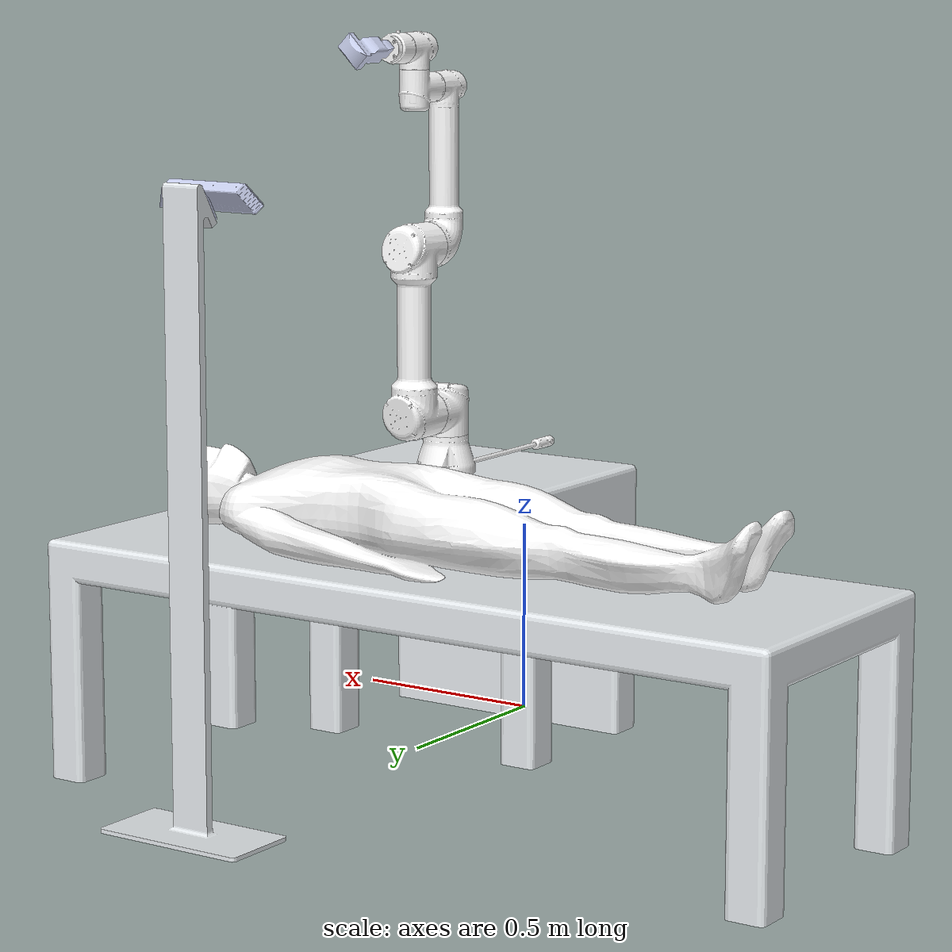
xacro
<?xml version="1.0"?>
<robot xmlns:xacro="http://www.ros.org/wiki/xacro" name="russ">
    <xacro:arg name="initial_positions_file" default="initial_positions.yaml" />

    <!-- Import russ urdf file -->
    <xacro:include filename="$(find russ_description)/urdf/russ_man.urdf" />

    <!-- Import control_xacro -->
    <xacro:include filename="russ.ros2_control.xacro" />

    <xacro:russ_ros2_control name="FakeSystem" initial_positions_file="$(arg initial_positions_file)"/>

</robot>

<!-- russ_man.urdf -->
<robot name="russ">
  <link name="table_base_link">
    <inertial>
      <origin xyz="8.3824E-08 0.2061 0.46328" rpy="0 0 0" />
      <mass value="309.14" />
      <inertia ixx="20.394" ixy="6.2669E-06" ixz="5.017E-06" iyy="26.052" iyz="-2.8893" izz="22.148" />
    </inertial>
    <visual>
      <origin xyz="0 0 0" rpy="0 0 0" />
      <geometry>
        <mesh filename="package://russ_description/meshes/man/base_link.STL" />
      </geometry>
      <material name="">
        <color rgba="0.89804 0.91765 0.92941 1" />
      </material>
    </visual>
    <collision>
      <origin xyz="0 0 0" rpy="0 0 0" />
      <geometry>
        <mesh filename="package://russ_description/meshes/man/base_link.STL" />
      </geometry>
    </collision>
  </link>
  <link name="world"/>
  <joint name="world_joint" type="fixed">
    <parent link="world"/>
    <child link="table_base_link"/>
    <origin rpy="0.0 0.0 0.0" xyz="0.0 0.0 0.0"/>
  </joint>
  <link name="bed_link">
    <inertial>
      <origin xyz="-1.3323E-15 -2.2204E-16 -0.086988" rpy="0 0 0" />
      <mass value="429.6" />
      <inertia ixx="25.702" ixy="-0.00012352" ixz="-1.3576E-13" iyy="178.76" iyz="-3.412E-14" izz="193.28" />
    </inertial>
    <visual>
      <origin xyz="0 0 0" rpy="0 0 0" />
      <geometry>
        <mesh filename="package://russ_description/meshes/man/bed_link.STL" />
      </geometry>
      <material name="">
        <color rgba="0.89804 0.91765 0.92941 1" />
      </material>
    </visual>
    <collision>
      <origin xyz="0 0 0" rpy="0 0 0" />
      <geometry>
        <mesh filename="package://russ_description/meshes/man/bed_link.STL" />
      </geometry>
    </collision>
  </link>
  <joint name="bed_joint" type="fixed">
    <origin xyz="-0.4 0.87 0.6" rpy="0 0 0" />
    <parent link="table_base_link" />
    <child link="bed_link" />
    <axis xyz="0 0 0" />
  </joint>
  <link name="man_link">
    <inertial>
      <origin xyz="-0.30355 0.067768 -0.10155" rpy="0 0 0" />
      <mass value="58.24" />
      <inertia ixx="0.70293" ixy="-0.0028572" ixz="-0.12719" iyy="8.0235" iyz="0.0098368" izz="8.4669" />
    </inertial>
    <visual>
      <origin xyz="0 0 0" rpy="0 0 0" />
      <geometry>
        <mesh filename="package://russ_description/meshes/man/man_link.STL" />
      </geometry>
      <material name="">
        <color rgba="1 1 1 1" />
      </material>
    </visual>
    <collision>
      <origin xyz="0 0 0" rpy="0 0 0" />
      <geometry>
        <mesh filename="package://russ_description/meshes/man/man_link.STL" />
      </geometry>
    </collision>
  </link>
  <joint name="man_joint" type="fixed">
    <origin xyz="0.466 -0.074751 0.19344" rpy="0 0 0" />
    <parent link="bed_link" />
    <child link="man_link" />
    <axis xyz="0 0 0" />
  </joint>
  <link name="camera_holder_link">
    <inertial>
      <origin xyz="0.440336125387075 -4.63518112781003E-15 0.698295733445473" rpy="0 0 0" />
      <mass value="10.7674813244167" />
      <inertia ixx="2.15585909806283" ixy="-4.98500136345296E-09" ixz="-1.23059570236083" iyy="2.84481281645542" iyz="2.87810900583756E-09" izz="0.760734918429647" />
    </inertial>
    <visual>
      <origin xyz="0 0 0" rpy="0 0 0" />
      <geometry>
        <mesh filename="package://russ_description/meshes/man/camera_holder_link.STL" />
      </geometry>
      <material name="">
        <color rgba="0.898039215686275 0.917647058823529 0.929411764705882 1" />
      </material>
    </visual>
    <collision>
      <origin xyz="0 0 0" rpy="0 0 0" />
      <geometry>
        <mesh filename="package://russ_description/meshes/man/camera_holder_link.STL" />
      </geometry>
    </collision>
  </link>
  <joint name="camera_holder_joint" type="fixed">
    <origin xyz="0 1.3665 1.4643" rpy="3.1416 0.5236 1.5708" />
    <parent link="table_base_link" />
    <child link="camera_holder_link" />
    <axis xyz="0 0 0" />
  </joint>
  <link name="kinect_link">
    <inertial>
      <origin xyz="0.0052461 0.00054533 -0.0069613" rpy="0 0 0" />
      <mass value="0.64645" />
      <inertia ixx="0.0028425" ixy="-2.566E-06" ixz="1.4774E-07" iyy="0.00026363" iyz="-3.4581E-08" izz="0.0029627" />
    </inertial>
    <visual>
      <origin xyz="0 0 0" rpy="0 0 0" />
      <geometry>
        <mesh filename="package://russ_description/meshes/man/camera_link.STL" />
      </geometry>
      <material name="">
        <color rgba="0.79216 0.81961 0.93333 1" />
      </material>
    </visual>
    <collision>
      <origin xyz="0 0 0" rpy="0 0 0" />
      <geometry>
        <mesh filename="package://russ_description/meshes/man/camera_link.STL" />
      </geometry>
    </collision>
  </link>
  <joint name="kinect_joint" type="fixed">
    <origin xyz="-0.0535 -0.00026386 0.011407" rpy="-1.8978 -1.5708 1.9025" />
    <parent link="camera_holder_link" />
    <child link="kinect_link" />
    <axis xyz="0 0 0" />
  </joint>
  <link name="base_link">
    <inertial>
      <origin xyz="0 0 0" rpy="0 0 0" />
      <mass value="4" />
      <inertia ixx="0" ixy="0" ixz="0" iyy="0" iyz="0" izz="0" />
    </inertial>
    <visual>
      <origin xyz="0 0 0" rpy="0 0 0" />
      <geometry>
        <mesh filename="package://russ_description/meshes/man/base.dae" />
      </geometry>
      <material name="">
        <color rgba="1 1 1 1" />
      </material>
    </visual>
    <collision>
      <origin xyz="0 0 0" rpy="0 0 0" />
      <geometry>
        <mesh filename="package://russ_description/meshes/man/arm_base_link.STL" />
      </geometry>
    </collision>
  </link>
  <joint name="base_joint" type="fixed">
    <origin xyz="0 0.37 0.7" rpy="0 0 0" />
    <parent link="table_base_link" />
    <child link="base_link" />
    <axis xyz="0 0 0" />
  </joint>
  <link name="shoulder_link">
    <inertial>
      <origin xyz="3.5038E-06 0.010909 0.00011678" rpy="0 0 0" />
      <mass value="3.7" />
      <inertia ixx="0.0039246" ixy="-4.6783E-08" ixz="4.0132E-08" iyy="0.0034476" iyz="-9.4718E-05" izz="0.0033425" />
    </inertial>
    <visual>
      <origin xyz="0 0 0" rpy="0 0 0" />
      <geometry>
        <mesh filename="package://russ_description/meshes/man/shoulder.dae" />
      </geometry>
      <material name="">
        <color rgba="1 1 1 1" />
      </material>
    </visual>
    <collision>
      <origin xyz="0 0 0" rpy="0 0 0" />
      <geometry>
        <mesh filename="package://russ_description/meshes/man/shoulder_link.STL" />
      </geometry>
    </collision>
  </link>
  <joint name="shoulder_joint" type="revolute">
    <origin xyz="0 0 0.1625" rpy="0 0 0" />
    <parent link="base_link" />
    <child link="shoulder_link" />
    <axis xyz="0 0 1" />
    <limit lower="-3.1416" upper="3.1416" effort="150" velocity="3.15" />
    <dynamics damping="0" friction="0" />
  </joint>
  <link name="upperarm_link">
    <inertial>
      <origin xyz="6.977E-06 0.00010671 0.2125" rpy="0 0 0" />
      <mass value="8.393" />
      <inertia ixx="0.14144" ixy="1.9188E-07" ixz="1.2835E-06" iyy="0.14028" iyz="-4.606E-07" izz="0.007421" />
    </inertial>
    <visual>
      <origin xyz="0 0 0" rpy="0 0 0" />
      <geometry>
        <mesh filename="package://russ_description/meshes/man/upperarm.dae" />
      </geometry>
      <material name="">
        <color rgba="1 1 1 1" />
      </material>
    </visual>
    <collision>
      <origin xyz="0 0 0" rpy="0 0 0" />
      <geometry>
        <mesh filename="package://russ_description/meshes/man/upperarm_link.STL" />
      </geometry>
    </collision>
  </link>
  <joint name="upperarm_joint" type="revolute">
    <origin xyz="0 0.1378 0" rpy="0 0 0" />
    <parent link="shoulder_link" />
    <child link="upperarm_link" />
    <axis xyz="0 1 0" />
    <limit lower="-3.1416" upper="3.1416" effort="150" velocity="3.15" />
    <dynamics damping="0" friction="0" />
  </joint>
  <link name="forearm_link">
    <inertial>
      <origin xyz="-2.2956E-05 0.010608 0.14792" rpy="0 0 0" />
      <mass value="2.275" />
      <inertia ixx="0.053639" ixy="1.0574E-05" ixz="-9.1444E-06" iyy="0.053127" iyz="0.0035172" izz="0.0026829" />
    </inertial>
    <visual>
      <origin xyz="0 0 0" rpy="0 0 0" />
      <geometry>
        <mesh filename="package://russ_description/meshes/man/forearm.dae" />
      </geometry>
      <material name="">
        <color rgba="1 1 1 1" />
      </material>
    </visual>
    <collision>
      <origin xyz="0 0 0" rpy="0 0 0" />
      <geometry>
        <mesh filename="package://russ_description/meshes/man/forearm_link.STL" />
      </geometry>
    </collision>
  </link>
  <joint name="forearm_joint" type="revolute">
    <origin xyz="0 -0.1312 0.425" rpy="0 0 0" />
    <parent link="upperarm_link" />
    <child link="forearm_link" />
    <axis xyz="0 1 0" />
    <limit lower="-3.1416" upper="3.1416" effort="150" velocity="3.15" />
    <dynamics damping="0" friction="0" />
  </joint>
  <link name="wrist1_link">
    <inertial>
      <origin xyz="-8.3494E-06 0.10839 -0.002548" rpy="0 0 0" />
      <mass value="1.219" />
      <inertia ixx="0.0010919" ixy="2.8181E-07" ixz="-1.116E-07" iyy="0.00068611" iyz="2.5893E-05" izz="0.00088473" />
    </inertial>
    <visual>
      <origin xyz="0 0 0" rpy="0 0 0" />
      <geometry>
        <mesh filename="package://russ_description/meshes/man/wrist1.dae" />
      </geometry>
      <material name="">
        <color rgba="1 1 1 1" />
      </material>
    </visual>
    <collision>
      <origin xyz="0 0 0" rpy="0 0 0" />
      <geometry>
        <mesh filename="package://russ_description/meshes/man/wrist1_link.STL" />
      </geometry>
    </collision>
  </link>
  <joint name="wrist1_joint" type="revolute">
    <origin xyz="0 0 0.39225" rpy="0 0 0" />
    <parent link="forearm_link" />
    <child link="wrist1_link" />
    <axis xyz="0 1 0" />
    <limit lower="-3.1416" upper="3.1416" effort="28" velocity="3.2" />
    <dynamics damping="0" friction="0" />
  </joint>
  <link name="wrist2_link">
    <inertial>
      <origin xyz="8.9598E-06 -0.00311 0.092148" rpy="0 0 0" />
      <mass value="1.219" />
      <inertia ixx="0.00069812" ixy="1.1122E-07" ixz="-2.3236E-07" iyy="0.00049175" iyz="7.5563E-06" izz="0.00060119" />
    </inertial>
    <visual>
      <origin xyz="0 0 0" rpy="0 0 0" />
      <geometry>
        <mesh filename="package://russ_description/meshes/man/wrist2.dae" />
      </geometry>
      <material name="">
        <color rgba="1 1 1 1" />
      </material>
    </visual>
    <collision>
      <origin xyz="0 0 0" rpy="0 0 0" />
      <geometry>
        <mesh filename="package://russ_description/meshes/man/wrist2_link.STL" />
      </geometry>
    </collision>
  </link>
  <joint name="wrist2_joint" type="revolute">
    <origin xyz="0 0.1267 0" rpy="0 0 0" />
    <parent link="wrist1_link" />
    <child link="wrist2_link" />
    <axis xyz="0 0 1" />
    <limit lower="-3.1416" upper="3.1416" effort="28" velocity="3.2" />
    <dynamics damping="0" friction="0" />
  </joint>
  <link name="wrist3_link">
    <inertial>
      <origin xyz="-2.1553E-09 0.075061 -1.5939E-05" rpy="0 0 0" />
      <mass value="0.1879" />
      <inertia ixx="0.00012784" ixy="8.6493E-12" ixz="-2.7362E-09" iyy="0.00016475" iyz="-1.6102E-07" izz="0.00012855" />
    </inertial>
    <visual>
      <origin xyz="0 0 0" rpy="0 0 0" />
      <geometry>
        <mesh filename="package://russ_description/meshes/man/wrist3.dae" />
      </geometry>
      <material name="">
        <color rgba="1 1 1 1" />
      </material>
    </visual>
    <collision>
      <origin xyz="0 0 0" rpy="0 0 0" />
      <geometry>
        <mesh filename="package://russ_description/meshes/man/wrist3_link.STL" />
      </geometry>
    </collision>
  </link>
  <joint name="wrist3_joint" type="revolute">
    <origin xyz="0 0 0.0997" rpy="0 0 0" />
    <parent link="wrist2_link" />
    <child link="wrist3_link" />
    <axis xyz="0 1 0" />
    <limit lower="-3.1416" upper="3.1416" effort="28" velocity="3.2" />
    <dynamics damping="0" friction="0" />
  </joint>
  <link name="upperprobe_link">
    <inertial>
      <origin xyz="-6.63458796418825E-05 0.0870563931078425 6.63349804452817E-05" rpy="0 0 0" />
      <mass value="0.29224119341871" />
      <inertia ixx="0.000539961437048322" ixy="8.57640660432055E-07" ixz="-1.68597761634735E-05" iyy="0.000122878958889507" iyz="-8.56331344497876E-07" izz="0.000539963118368424" />
    </inertial>
    <visual>
      <origin xyz="0 0 0" rpy="0 0 0" />
      <geometry>
        <mesh filename="package://russ_description/meshes/man/upperprobe_link.STL" />
      </geometry>
      <material name="">
        <color rgba="0.792156862745098 0.819607843137255 0.933333333333333 1" />
      </material>
    </visual>
    <collision>
      <origin xyz="0 0 0" rpy="0 0 0" />
      <geometry>
        <mesh filename="package://russ_description/meshes/man/upperprobe_link.STL" />
      </geometry>
    </collision>
  </link>
  <joint name="upperprobe_joint" type="fixed">
    <origin xyz="0 0.1086 0" rpy="0 0 0" />
    <parent link="wrist3_link" />
    <child link="upperprobe_link" />
    <axis xyz="0 0 0" />
  </joint>
  <link name="probe_link">
    <inertial>
      <origin xyz="-0.000325357010050917 -0.00796680505131175 0.000325397027811647" rpy="0 0 0" />
      <mass value="0.0275873695177772" />
      <inertia ixx="6.56286772751349E-06" ixy="-5.48238728667042E-11" ixz="-2.04472096416803E-06" iyy="1.25436023819217E-05" iyz="-5.18677191691285E-11" izz="6.56290712583165E-06" />
    </inertial>
    <visual>
      <origin xyz="0 0 0" rpy="0 0 0" />
      <geometry>
        <mesh filename="package://russ_description/meshes/man/probe_link.STL" />
      </geometry>
      <material name="">
        <color rgba="0.792156862745098 0.819607843137255 0.933333333333333 1" />
      </material>
    </visual>
    <collision>
      <origin xyz="0 0 0" rpy="0 0 0" />
      <geometry>
        <mesh filename="package://russ_description/meshes/man/probe_link.STL" />
      </geometry>
    </collision>
  </link>
  <joint name="probe_joint" type="fixed">
    <origin xyz="0 0.16 0" rpy="0 0 0" />
    <parent link="upperprobe_link" />
    <child link="probe_link" />
    <axis xyz="0 0 0" />
  </joint>

  <ros2_control name="GazeboSystem" type="system">
    <hardware>
      <plugin>gazebo_ros2_control/GazeboSystem</plugin>
    </hardware>
    <joint name="shoulder_joint">
      <command_interface name="position">
        <param name="min">-1</param>
        <param name="max">1</param>
      </command_interface>
      <state_interface name="position">
        <param name="initial_value">0.0</param>
      </state_interface>
      <state_interface name="velocity"/>
    </joint>
    <joint name="upperarm_joint">
      <command_interface name="position">
        <param name="min">-1</param>
        <param name="max">1</param>
      </command_interface>
      <state_interface name="position">
        <param name="initial_value">0.0</param>
      </state_interface>
      <state_interface name="velocity"/>
    </joint>
    <joint name="forearm_joint">
      <command_interface name="position">
        <param name="min">-1</param>
        <param name="max">1</param>
      </command_interface>
      <state_interface name="position">
        <param name="initial_value">0.0</param>
      </state_interface>
      <state_interface name="velocity"/>
    </joint>
    <joint name="wrist1_joint">
      <command_interface name="position">
        <param name="min">-1</param>
        <param name="max">1</param>
      </command_interface>
      <state_interface name="position">
        <param name="initial_value">0.0</param>
      </state_interface>
      <state_interface name="velocity"/>
    </joint>
    <joint name="wrist2_joint">
      <command_interface name="position">
        <param name="min">-1</param>
        <param name="max">1</param>
      </command_interface>
      <state_interface name="position">
        <param name="initial_value">0.0</param>
      </state_interface>
      <state_interface name="velocity"/>
    </joint>
    <joint name="wrist3_joint">
      <command_interface name="position">
        <param name="min">-1</param>
        <param name="max">1</param>
      </command_interface>
      <state_interface name="position">
        <param name="initial_value">0.0</param>
      </state_interface>
      <state_interface name="velocity"/>
    </joint>
  </ros2_control>

  <gazebo reference="kinect_link">
    <sensor type="depth" name="camera">
      <!-- Set always_on only sensor, not on plugin -->
      <always_on>1</always_on>

      <!-- Set update_rate only sensor, not on plugin -->
      <update_rate>20.0</update_rate>

      <camera name="kinect">
        <horizontal_fov>1.05</horizontal_fov>
        <image>
          <format>R8G8B8</format>
          <width>640</width>
          <height>480</height>
        </image>
        <clip>
          <near>0.05</near>
          <far>3.0</far>
        </clip>
        <distortion>
          <k1>0.0</k1>
          <k2>0.0</k2>
          <k3>0.0</k3>
          <p1>0.0</p1>
          <p2>0.0</p2>
          <center>0.0 0.0</center>
        </distortion>
      </camera>
      <plugin name="kinect_camera_controller" filename="libgazebo_ros_camera.so">
        <ros>
          <namespace>custom_ns</namespace>
          <remapping>custom_camera/image_raw:=custom_camera/custom_image</remapping>
          <remapping>custom_camera/image_depth:=custom_camera/custom_image_depth</remapping>
          <remapping>custom_camera/camera_info:=custom_camera/custom_info_raw</remapping>
          <remapping>custom_camera/camera_info_depth:=custom_camera/custom_info_depth</remapping>
          <remapping>custom_camera/points:=custom_camera/custom_points</remapping>
        </ros>

        <!-- Set camera name. If empty, defaults to sensor name (i.e. "sensor_name") -->
        <camera_name>custom_camera</camera_name>

        <!-- Set TF frame name. If empty, defaults to link name (i.e. "link_name") -->
        <frame_name>kinect_link</frame_name>

        <hack_baseline>0.07</hack_baseline>

        <!-- No need to repeat distortion parameters or to set autoDistortion -->

        <min_depth>0.001</min_depth>
        <max_depth>300.0</max_depth>
      </plugin>
    </sensor>
  </gazebo>

  <gazebo>
    <plugin filename="libgazebo_ros2_control.so" name="gazebo_ros2_control">
      <parameters>$(find russ_moveit_node)/config/ros2_controllers.yaml</parameters>
      <robot_param_node>robot_state_publisher</robot_param_node>
    </plugin>
  </gazebo>

</robot>
